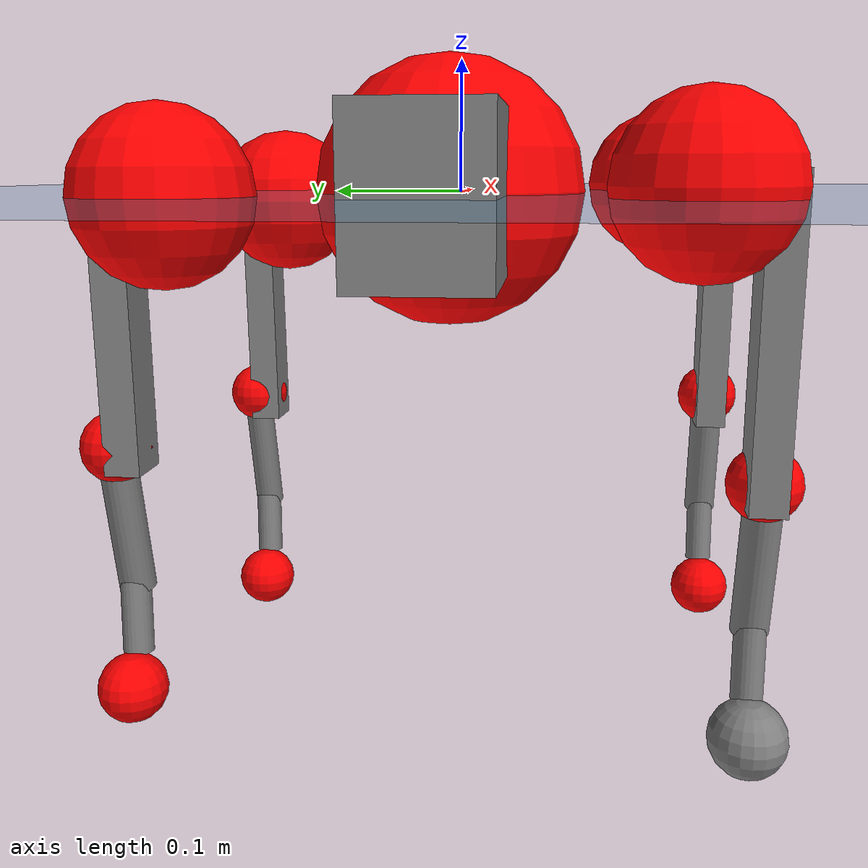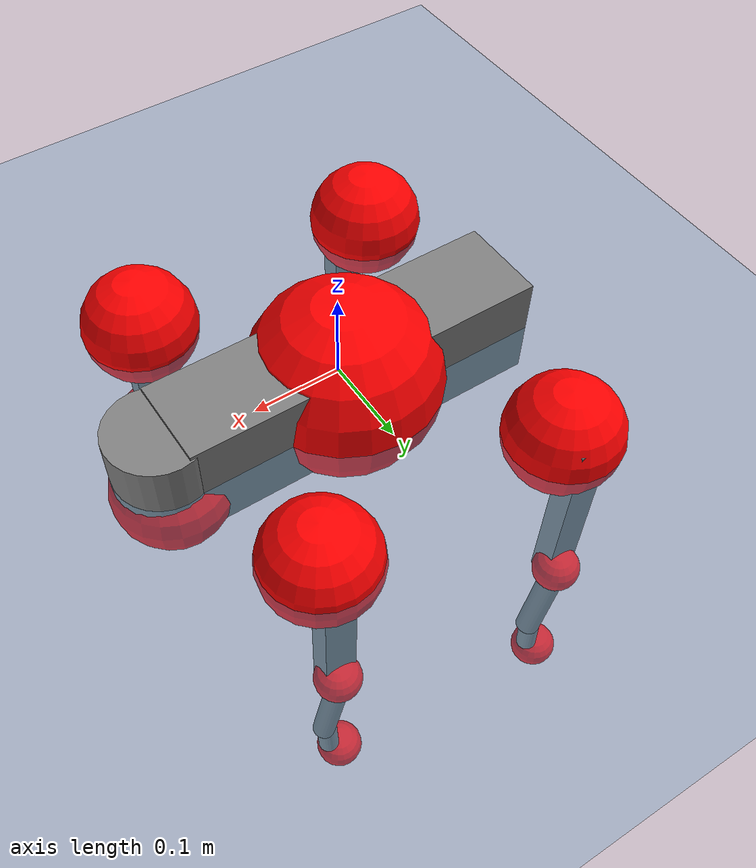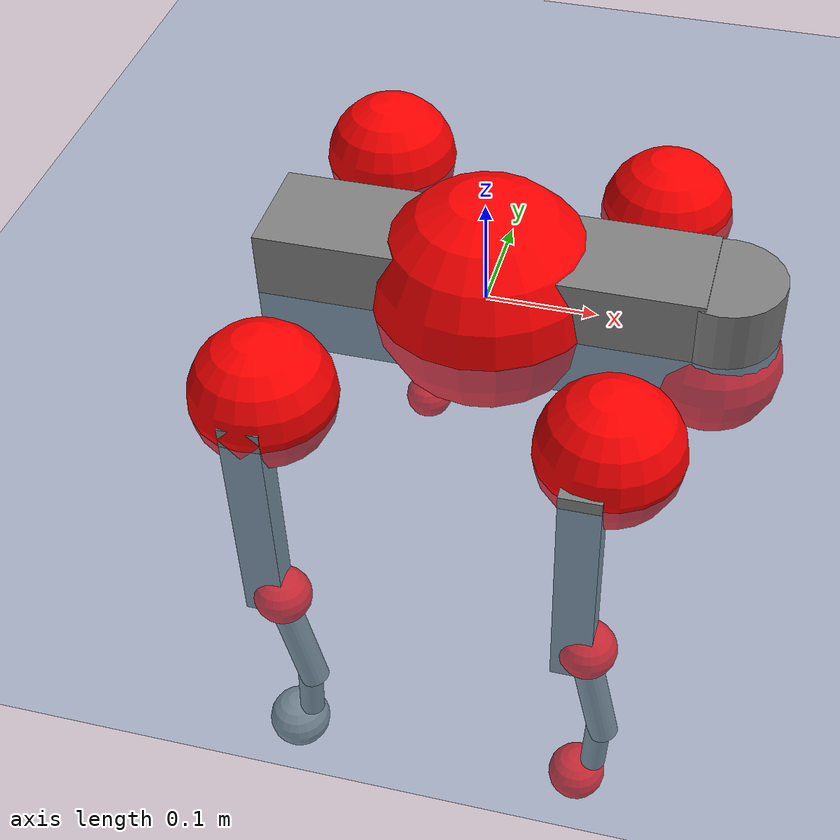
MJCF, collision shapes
<mujoco model="go2">
  <compiler angle="radian" assetdir="assets" balanceinertia="true" inertiafromgeom="false"/>

  <option timestep="0.005" density="1.2" viscosity="2e-05"/>

  <size nkey="1"/>

  <visual>
    <quality shadowsize="8192"/>
    <map shadowclip="0.5"/>
  </visual>

  <default>
    <default class="/">
      <geom contype="0" conaffinity="0" group="1" solref="-1000 -80"/>
      <site size="0.01 0.005 0.005" group="5"/>
      <general forcelimited="true" biastype="affine" gainprm="20" biasprm="0 -20 -0.5"/>
      <default class="go2">
        <joint armature="0.01" damping="0.01" frictionloss="0.2"/>
        <geom condim="1" margin="0.001"/>
        <default class="visual">
          <geom type="mesh" group="2"/>
        </default>
        <default class="collision">
          <geom group="3"/>
          <default class="foot">
            <geom size="0.022 0 0" condim="6" priority="1" friction="0.8 0.02 0.01" solimp="0.015 1 0.022"/>
          </default>
        </default>
        <default class="reward_collision_sphere">
          <geom group="5" rgba="1 0 0 1"/>
        </default>
      </default>
    </default>
  </default>

  <asset>
    <texture type="skybox" colorspace="auto" name="//unnamed_texture_0" builtin="gradient" rgb1="0.95 0.95 0.95" rgb2="0.95 0.95 0.95" width="100" height="600"/>
    <texture type="2d" colorspace="auto" name="texplane" builtin="checker" rgb1="0.345 0.575 0.748" rgb2="0.345 0.575 0.748" markrgb="1 1 1" width="512" height="512"/>
    <material name="MatPlane" class="/" texture="texplane" texuniform="true" texrepeat="2 2" specular="0.9"/>
    <material name="metal" class="/" rgba="0.9 0.95 0.95 1"/>
    <material name="black" class="/" rgba="0 0 0 1"/>
    <material name="white" class="/"/>
    <material name="gray" class="/" rgba="0.671705 0.692426 0.77427 1"/>
    <mesh name="base_0" class="/" file="base_0.obj"/>
    <mesh name="base_1" class="/" file="base_1.obj"/>
    <mesh name="base_2" class="/" file="base_2.obj"/>
    <mesh name="base_3" class="/" file="base_3.obj"/>
    <mesh name="base_4" class="/" file="base_4.obj"/>
    <mesh name="hip_0" class="/" file="hip_0.obj"/>
    <mesh name="hip_1" class="/" file="hip_1.obj"/>
    <mesh name="thigh_0" class="/" file="thigh_0.obj"/>
    <mesh name="thigh_1" class="/" file="thigh_1.obj"/>
    <mesh name="thigh_mirror_0" class="/" file="thigh_mirror_0.obj"/>
    <mesh name="thigh_mirror_1" class="/" file="thigh_mirror_1.obj"/>
    <mesh name="calf_0" class="/" file="calf_0.obj"/>
    <mesh name="calf_1" class="/" file="calf_1.obj"/>
    <mesh name="calf_mirror_0" class="/" file="calf_mirror_0.obj"/>
    <mesh name="calf_mirror_1" class="/" file="calf_mirror_1.obj"/>
    <mesh name="foot" class="/" file="foot.obj"/>
  </asset>

  <worldbody>
    <geom name="floor" class="/" size="100 100 0.125" type="plane" group="0" material="MatPlane"/>
    <light name="toplight_shadow" class="/" pos="0 0 5" dir="0.0990148 0.0990148 -0.990148" type="directional" ambient="0.04 0.04 0.04" diffuse="0.55 0.55 0.55" specular="0.12 0.12 0.12"/>
    <light name="toplight_fill" class="/" pos="0 0 5" dir="0.0990148 0.0990148 -0.990148" type="directional" castshadow="false" ambient="0.04 0.04 0.04" diffuse="0.3 0.3 0.3" specular="0.08 0.08 0.08"/>
    <body name="trunk" childclass="go2" pos="-0.00130286 0.00897785 0.000310284" quat="1 -0.000117946 0.000123999 2.07022e-05">
      <inertial pos="0.0125847 0.00971739 -0.00522226" quat="0.0540511 0.735602 -0.0242598 0.674818" mass="8.38749" diaginertia="0.0251673 0.929723 0.0137878"/>
      <joint name="//unnamed_joint_0" type="free" armature="0" damping="0" frictionloss="0"/>
      <geom name="//unnamed_geom_1" class="visual" material="black" mesh="base_0"/>
      <geom name="//unnamed_geom_2" class="visual" material="black" mesh="base_1"/>
      <geom name="//unnamed_geom_3" class="visual" material="black" mesh="base_2"/>
      <geom name="//unnamed_geom_4" class="visual" material="white" mesh="base_3"/>
      <geom name="//unnamed_geom_5" class="visual" material="gray" mesh="base_4"/>
      <geom name="trunk_1" class="collision" size="0.199316 0.0495376 0.0603988" type="box"/>
      <geom name="trunk_2" class="collision" size="0.0529814 0.0476833" pos="0.209981 0 0.00891513" type="cylinder"/>
      <geom name="trunk_3" class="collision" size="0.0498025" pos="0.215875 0 -0.0534908"/>
      <geom name="//unnamed_geom_9" class="reward_collision_sphere" size="0.105963"/>
      <geom name="//unnamed_geom_10" class="reward_collision_sphere" size="0.0635777" pos="0.206297 0 -0.0401181"/>
      <site name="imu" pos="-0.0620552 -0.0313953 0.0825375" size="0.0105963"/>
      <camera name="track" pos="0 -3.10119 0" quat="0.707107 0.707107 0 0" mode="trackcom"/>
      <camera name="ego_camera" pos="0.229874 0 0.0401181" quat="-0.5 -0.5 0.5 0.5"/>
      <body name="FL_hip" pos="0.135076 0.0589092 -0.0110635" quat="0.999989 -0.00251146 0.00170679 -0.00359068">
        <inertial pos="-0.00318736 0.00270071 -0.00565585" quat="0.497166 0.499058 0.505595 0.498137" mass="0.881352" diaginertia="0.000189979 0.00585282 0.000261906"/>
        <joint name="FL_hip_joint" pos="0 0 0" axis="0.999924 0.00938174 -0.00801224" range="-1.31725 0.930421" armature="0.0105386" damping="0.0519189" frictionloss="0.131784"/>
        <geom name="//unnamed_geom_11" class="visual" material="metal" mesh="hip_0"/>
        <geom name="//unnamed_geom_12" class="visual" material="gray" mesh="hip_1"/>
        <geom name="//unnamed_geom_13" class="collision" size="0.0487429 0.0211926" pos="0 0.124048 0" quat="0.707107 0.707107 0 0" type="cylinder"/>
        <geom name="//unnamed_geom_14" class="reward_collision_sphere" size="0.0635777" pos="0 0.108542 0"/>
        <body name="FL_thigh" pos="0.00184294 0.134817 0.00128385" quat="0.999992 -0.00318502 -7.50531e-05 -0.00247789">
          <inertial pos="-0.0107974 -0.041306 -0.0298614" quat="0.8113 0.100035 0.0193268 0.575683" mass="1.36823" diaginertia="0.00130972 0.0533277 0.000519052"/>
          <joint name="FL_thigh_joint" pos="0 0 0" axis="-0.0134625 0.998927 -0.0443198" range="-1.67427 3.25842" armature="0.00548828" damping="0.00393542" frictionloss="0.170933"/>
          <geom name="//unnamed_geom_15" class="visual" material="metal" mesh="thigh_0"/>
          <geom name="//unnamed_geom_16" class="visual" material="gray" mesh="thigh_1"/>
          <geom name="//unnamed_geom_17" class="collision" size="0.11285 0.0129804 0.0180137" pos="0 0 -0.0949461" quat="0.707107 0 0.707107 0" type="box"/>
          <body name="FL_calf" pos="0.00312406 0.0114597 -0.186097" quat="0.999996 0.00198198 -0.000973664 -0.00190481">
            <inertial pos="-0.00265573 -0.0014088 -0.113317" quat="0.708521 -0.00397711 -0.00540789 0.705657" mass="0.292887" diaginertia="0.000364962 0.0113407 3.51081e-05"/>
            <joint name="FL_calf_joint" pos="0 0 0" axis="-0.00500574 0.999987 -0.000502532" stiffness="0.00401171" range="-2.47251 -0.807615" armature="0.0141765" damping="0.00440128" frictionloss="0.204912"/>
            <geom name="//unnamed_geom_18" class="visual" material="gray" mesh="calf_0"/>
            <geom name="//unnamed_geom_19" class="visual" material="black" mesh="calf_1"/>
            <geom name="FL_calf0" class="collision" size="0.0127155 0.0635777" pos="0.0058942 0 -0.0534908" quat="0.994493 0 -0.104807 0" type="cylinder"/>
            <geom name="//unnamed_geom_21" class="collision" size="0.0116559 0.0344379" pos="0.0147355 0 -0.131944" quat="0.999688 0 0.0249974 0" type="cylinder"/>
            <geom name="//unnamed_geom_22" class="visual" pos="0 0 -0.189892" quat="1 0 0 0" material="black" mesh="foot"/>
            <geom name="FL_foot" class="foot" size="0.0255833" pos="-0.00147355 0 -0.189892"/>
            <geom name="//unnamed_geom_24" class="reward_collision_sphere" size="0.0264907"/>
            <geom name="//unnamed_geom_25" class="reward_collision_sphere" size="0.0264907" pos="-0.00147355 0 -0.189892"/>
            <site name="FL_foot" class="foot" pos="-0.00147355 0 -0.189892" size="0.0105963"/>
          </body>
        </body>
      </body>
      <body name="FR_hip" pos="0.144962 -0.0668556 0.00471166" quat="0.999999 0.00037253 0.00154379 0.000614606">
        <inertial pos="-0.000213275 -0.00475027 -0.00217062" quat="0.497561 0.507731 0.496274 0.498352" mass="0.917353" diaginertia="0.000200085 0.00628248 0.000240004"/>
        <joint name="FR_hip_joint" pos="0 0 0" axis="0.999313 -0.0146167 -0.0340557" stiffness="0.0200882" range="-1.04339 1.0185" armature="0.00931202" damping="0" frictionloss="0.174199"/>
        <geom name="//unnamed_geom_26" class="visual" pos="0 5.74166e-09 2.46272e-07" quat="4.63268e-05 1 0 0" material="metal" mesh="hip_0"/>
        <geom name="//unnamed_geom_27" class="visual" pos="0 9.30792e-09 -6.09124e-07" quat="4.63268e-05 1 0 0" material="gray" mesh="hip_1"/>
        <geom name="//unnamed_geom_28" class="collision" size="0.0487429 0.0211926" pos="0 -0.124048 0" quat="0.707107 0.707107 0 0" type="cylinder"/>
        <geom name="//unnamed_geom_29" class="reward_collision_sphere" size="0.0635777" pos="0 -0.108542 0"/>
        <body name="FR_thigh" pos="-0.0114929 -0.161108 -0.0116342" quat="0.999996 0.00101543 -0.000575719 0.00241029">
          <inertial pos="0.00254341 0.0476058 -0.0298305" quat="0.531574 -0.0353 0.0676602 0.843567" mass="1.08138" diaginertia="0.00114032 0.0461122 0.000456217"/>
          <joint name="FR_thigh_joint" pos="0 0 0" axis="-0.00118579 -0.999983 -0.00563674" stiffness="0.01852" range="-3.25439 1.57307" armature="0.0106172" damping="0" frictionloss="0.208476"/>
          <geom name="//unnamed_geom_30" class="visual" material="metal" mesh="thigh_mirror_0"/>
          <geom name="//unnamed_geom_31" class="visual" material="gray" mesh="thigh_mirror_1"/>
          <geom name="//unnamed_geom_32" class="collision" size="0.11285 0.0129804 0.0180137" pos="0 0 -0.0949461" quat="0.707107 0 0.707107 0" type="box"/>
          <body name="FR_calf" pos="0.0119484 0.000543995 -0.183011" quat="0.999987 -0.00489249 0.00143457 0.000819555">
            <inertial pos="0.000737553 0.001183 -0.133836" quat="0.710363 0.0230704 0.0192633 0.703193" mass="0.286967" diaginertia="0.000314649 0.0132189 2.861e-05"/>
            <joint name="FR_calf_joint" pos="0 0 0" axis="0.00596279 -0.997936 0.0639457" stiffness="0.0407392" range="0.825144 2.76735" armature="0.00494223" damping="0" frictionloss="0.31982"/>
            <geom name="//unnamed_geom_33" class="visual" material="gray" mesh="calf_mirror_0"/>
            <geom name="//unnamed_geom_34" class="visual" material="black" mesh="calf_mirror_1"/>
            <geom name="FR_calf0" class="collision" size="0.0137752 0.0635777" pos="0.00736775 0 -0.0534908" quat="0.995004 0 -0.0998334 0" type="cylinder"/>
            <geom name="//unnamed_geom_36" class="collision" size="0.0116559 0.0344379" pos="0.0147355 0 -0.131944" quat="0.999688 0 0.0249974 0" type="cylinder"/>
            <geom name="//unnamed_geom_37" class="visual" pos="0 0 -0.189892" quat="1 0 0 0" material="black" mesh="foot"/>
            <geom name="FR_foot" class="foot" size="0.0262177" pos="-0.00147355 0 -0.189892"/>
            <geom name="//unnamed_geom_39" class="reward_collision_sphere" size="0.0264907"/>
            <geom name="//unnamed_geom_40" class="reward_collision_sphere" size="0.0264907" pos="-0.00147355 0 -0.189892"/>
            <site name="FR_foot" class="foot" pos="-0.00147355 0 -0.189892" size="0.0105963"/>
          </body>
        </body>
      </body>
      <body name="RL_hip" pos="-0.142263 0.0724544 -0.000720165" quat="0.999998 -0.00170805 -0.0004362 -0.000246506">
        <inertial pos="0.00492145 0.0126965 -0.00612709" quat="0.502251 0.490828 0.508178 0.498585" mass="0.734844" diaginertia="0.000183563 0.00505342 0.000250727"/>
        <joint name="RL_hip_joint" pos="0 0 0" axis="-0.999509 0.00457154 -0.0309965" stiffness="0.0107782" range="-1.08483 1.13492" armature="0.010653" damping="0.00539687" frictionloss="0.197738"/>
        <geom name="//unnamed_geom_41" class="visual" pos="1.34801e-09 0 2.64241e-07" quat="4.63268e-05 0 1 0" material="metal" mesh="hip_0"/>
        <geom name="//unnamed_geom_42" class="visual" pos="2.18528e-09 0 2.34344e-07" quat="4.63268e-05 0 1 0" material="gray" mesh="hip_1"/>
        <geom name="//unnamed_geom_43" class="collision" size="0.0487429 0.0211926" pos="0 0.124048 0" quat="0.707107 0.707107 0 0" type="cylinder"/>
        <geom name="//unnamed_geom_44" class="reward_collision_sphere" size="0.0635777" pos="0 0.108542 0"/>
        <body name="RL_thigh" pos="0.00701124 0.146033 0.012387" quat="1 -0.00068162 0.000173185 -0.000404564">
          <inertial pos="-0.00150708 -0.0348603 -0.0171817" quat="0.824289 0.091925 0.0101095 0.558565" mass="1.08621" diaginertia="0.00126575 0.0470536 0.000469236"/>
          <joint name="RL_thigh_joint" pos="0 0 0" axis="-0.0145111 0.999851 0.00933775" stiffness="0.000829532" range="-0.345514 4.39902" armature="0.0125158" damping="0.0568291" frictionloss="0.209505"/>
          <geom name="//unnamed_geom_45" class="visual" material="metal" mesh="thigh_0"/>
          <geom name="//unnamed_geom_46" class="visual" material="gray" mesh="thigh_1"/>
          <geom name="//unnamed_geom_47" class="collision" size="0.11285 0.0129804 0.0180137" pos="0 0 -0.0949461" quat="0.707107 0 0.707107 0" type="box"/>
          <body name="RL_calf" pos="0.00730343 0.0132576 -0.1924" quat="0.999999 0.000394523 0.000838982 0.000498499">
            <inertial pos="0.00428837 0.000589827 -0.125658" quat="0.712714 0.00415055 -0.00223713 0.701439" mass="0.240593" diaginertia="0.000257623 0.0118865 2.76326e-05"/>
            <joint name="RL_calf_joint" pos="0 0 0" axis="-0.0286368 0.999245 0.0262451" stiffness="0.00408534" range="-2.97987 -0.662607" armature="0.0113159" damping="0.0439626" frictionloss="0.197248"/>
            <geom name="//unnamed_geom_48" class="visual" material="gray" mesh="calf_0"/>
            <geom name="//unnamed_geom_49" class="visual" material="black" mesh="calf_1"/>
            <geom name="RL_calf0" class="collision" size="0.0137752 0.0635777" pos="0.00736775 0 -0.0534908" quat="0.995004 0 -0.0998334 0" type="cylinder"/>
            <geom name="//unnamed_geom_51" class="collision" size="0.0116559 0.0344379" pos="0.0147355 0 -0.131944" quat="0.999688 0 0.0249974 0" type="cylinder"/>
            <geom name="//unnamed_geom_52" class="visual" pos="0 0 -0.189892" quat="1 0 0 0" material="black" mesh="foot"/>
            <geom name="RL_foot" class="foot" size="0.0197898" pos="-0.00147355 0 -0.189892"/>
            <geom name="//unnamed_geom_54" class="reward_collision_sphere" size="0.0264907"/>
            <geom name="//unnamed_geom_55" class="reward_collision_sphere" size="0.0264907" pos="-0.00147355 0 -0.189892"/>
            <site name="RL_foot" class="foot" pos="-0.00147355 0 -0.189892" size="0.0105963"/>
          </body>
        </body>
      </body>
      <body name="RR_hip" pos="-0.145783 -0.0717918 0.0062538" quat="0.999987 -0.00203517 -0.00329189 -0.00335075">
        <inertial pos="0.00153254 -0.0131119 0.0072964" quat="0.505746 0.490142 0.501747 0.502227" mass="0.752164" diaginertia="0.000157515 0.00467988 0.000213181"/>
        <joint name="RR_hip_joint" pos="0 0 0" axis="-0.998572 0.0286602 0.0450773" range="-1.04169 1.27499" armature="0.0106026" damping="0.0233281" frictionloss="0.212294"/>
        <geom name="//unnamed_geom_56" class="visual" pos="-1.31983e-09 5.74166e-09 1.79691e-08" quat="2.14617e-09 4.63268e-05 4.63268e-05 -1" material="metal" mesh="hip_0"/>
        <geom name="//unnamed_geom_57" class="visual" pos="-2.25497e-09 9.30792e-09 8.43468e-07" quat="2.14617e-09 4.63268e-05 4.63268e-05 -1" material="gray" mesh="hip_1"/>
        <geom name="//unnamed_geom_58" class="collision" size="0.0487429 0.0211926" pos="0 -0.124048 0" quat="0.707107 0.707107 0 0" type="cylinder"/>
        <geom name="//unnamed_geom_59" class="reward_collision_sphere" size="0.0635777" pos="0 -0.108542 0"/>
        <body name="RR_thigh" pos="0.000498972 -0.156196 -0.00674005" quat="0.999985 0.00262389 0.00328691 0.00348722">
          <inertial pos="-0.00355321 0.0457181 -0.0357545" quat="0.555388 -0.026239 0.0809073 0.82723" mass="1.50309" diaginertia="0.00140597 0.0575878 0.000534654"/>
          <joint name="RR_thigh_joint" pos="0 0 0" axis="0.0259184 -0.998252 0.0531216" stiffness="0.0192418" range="-4.55523 0.400422" armature="0.0101011" damping="0.0118304" frictionloss="0.200065"/>
          <geom name="//unnamed_geom_60" class="visual" material="metal" mesh="thigh_mirror_0"/>
          <geom name="//unnamed_geom_61" class="visual" material="gray" mesh="thigh_mirror_1"/>
          <geom name="//unnamed_geom_62" class="collision" size="0.11285 0.0129804 0.0180137" pos="0 0 -0.0949461" quat="0.707107 0 0.707107 0" type="box"/>
          <body name="RR_calf" pos="0.014025 -0.00231797 -0.193578" quat="0.999997 0.00180616 -0.00024942 -0.00173268">
            <inertial pos="-0.0089128 0.00120979 -0.123407" quat="0.702782 -0.00245477 0.0213815 0.71108" mass="0.289735" diaginertia="0.000282998 0.0138269 2.99021e-05"/>
            <joint name="RR_calf_joint" pos="0 0 0" axis="-0.0581822 -0.998237 0.0117599" stiffness="0.0285556" range="1.03764 2.49154" armature="0.0165091" damping="0" frictionloss="0.226729"/>
            <geom name="//unnamed_geom_63" class="visual" material="gray" mesh="calf_mirror_0"/>
            <geom name="//unnamed_geom_64" class="visual" material="black" mesh="calf_mirror_1"/>
            <geom name="RR_calf0" class="collision" size="0.0137752 0.0635777" pos="0.00736775 0 -0.0534908" quat="0.995004 0 -0.0998334 0" type="cylinder"/>
            <geom name="//unnamed_geom_66" class="collision" size="0.0116559 0.0344379" pos="0.0147355 0 -0.131944" quat="0.999688 0 0.0249974 0" type="cylinder"/>
            <geom name="//unnamed_geom_67" class="visual" pos="0 0 -0.189892" quat="1 0 0 0" material="black" mesh="foot"/>
            <geom name="RR_foot" class="foot" size="0.0289402" pos="-0.00147355 0 -0.189892"/>
            <geom name="//unnamed_geom_69" class="reward_collision_sphere" size="0.0264907"/>
            <geom name="//unnamed_geom_70" class="reward_collision_sphere" size="0.0264907" pos="-0.00147355 0 -0.189892"/>
            <site name="RR_foot" class="foot" pos="-0.00147355 0 -0.189892" size="0.0105963"/>
          </body>
        </body>
      </body>
    </body>
  </worldbody>

  <contact>
    <pair class="/" geom1="floor" geom2="FL_foot" name="//unnamed_contact_0"/>
    <pair class="/" geom1="floor" geom2="FR_foot" name="//unnamed_contact_1"/>
    <pair class="/" geom1="floor" geom2="RL_foot" name="//unnamed_contact_2"/>
    <pair class="/" geom1="floor" geom2="RR_foot" name="//unnamed_contact_3"/>
  </contact>

  <actuator>
    <general name="FL_hip" class="/" joint="FL_hip_joint" forcerange="-12.5274 12.5274" gainprm="15.0046" biasprm="0 -15.0046 -0.479393"/>
    <general name="FL_thigh" class="/" joint="FL_thigh_joint" forcerange="-32.2853 32.2853" gainprm="15.0046" biasprm="0 -15.0046 -0.479393"/>
    <general name="FL_calf" class="/" joint="FL_calf_joint" forcerange="-53.4941 53.4941" gainprm="15.0046" biasprm="0 -15.0046 -0.479393"/>
    <general name="FR_hip" class="/" joint="FR_hip_joint" forcerange="-14.0896 14.0896" gainprm="15.0046" biasprm="0 -15.0046 -0.479393"/>
    <general name="FR_thigh" class="/" joint="FR_thigh_joint" forcerange="-14.0561 14.0561" gainprm="15.0046" biasprm="0 -15.0046 -0.479393"/>
    <general name="FR_calf" class="/" joint="FR_calf_joint" forcerange="-34.6535 34.6535" gainprm="15.0046" biasprm="0 -15.0046 -0.479393"/>
    <general name="RL_hip" class="/" joint="RL_hip_joint" forcerange="-26.925 26.925" gainprm="15.0046" biasprm="0 -15.0046 -0.479393"/>
    <general name="RL_thigh" class="/" joint="RL_thigh_joint" forcerange="-24.9141 24.9141" gainprm="15.0046" biasprm="0 -15.0046 -0.479393"/>
    <general name="RL_calf" class="/" joint="RL_calf_joint" forcerange="-59.91 59.91" gainprm="15.0046" biasprm="0 -15.0046 -0.479393"/>
    <general name="RR_hip" class="/" joint="RR_hip_joint" forcerange="-36.8857 36.8857" gainprm="15.0046" biasprm="0 -15.0046 -0.479393"/>
    <general name="RR_thigh" class="/" joint="RR_thigh_joint" forcerange="-25.5022 25.5022" gainprm="15.0046" biasprm="0 -15.0046 -0.479393"/>
    <general name="RR_calf" class="/" joint="RR_calf_joint" forcerange="-51.4903 51.4903" gainprm="15.0046" biasprm="0 -15.0046 -0.479393"/>
  </actuator>

  <sensor>
    <gyro site="imu" name="imu_angular_velocity"/>
    <velocimeter site="imu" name="imu_linear_velocity"/>
    <framelinvel objtype="site" objname="FL_foot" name="FL_foot_global_linear_velocity"/>
    <framelinvel objtype="site" objname="FR_foot" name="FR_foot_global_linear_velocity"/>
    <framelinvel objtype="site" objname="RL_foot" name="RL_foot_global_linear_velocity"/>
    <framelinvel objtype="site" objname="RR_foot" name="RR_foot_global_linear_velocity"/>
  </sensor>

  <keyframe>
    <key name="home" qpos="0 0 0.325 1 0 0 0 0.1 0.8 -1.5 -0.1 -0.8 1.5 -0.1 0.8 -1.5 0.1 -0.8 1.5"/>
  </keyframe>
</mujoco>
